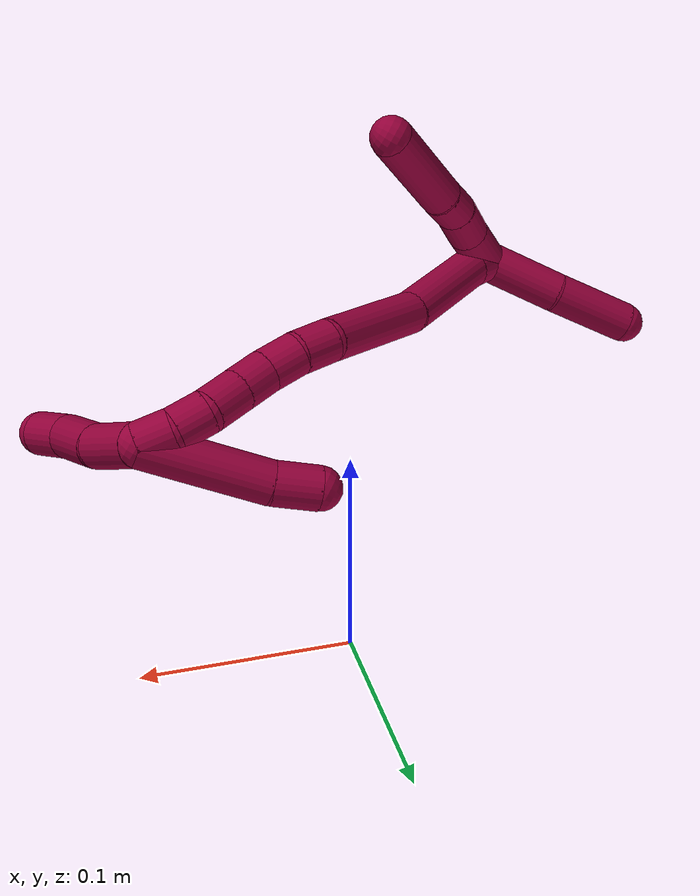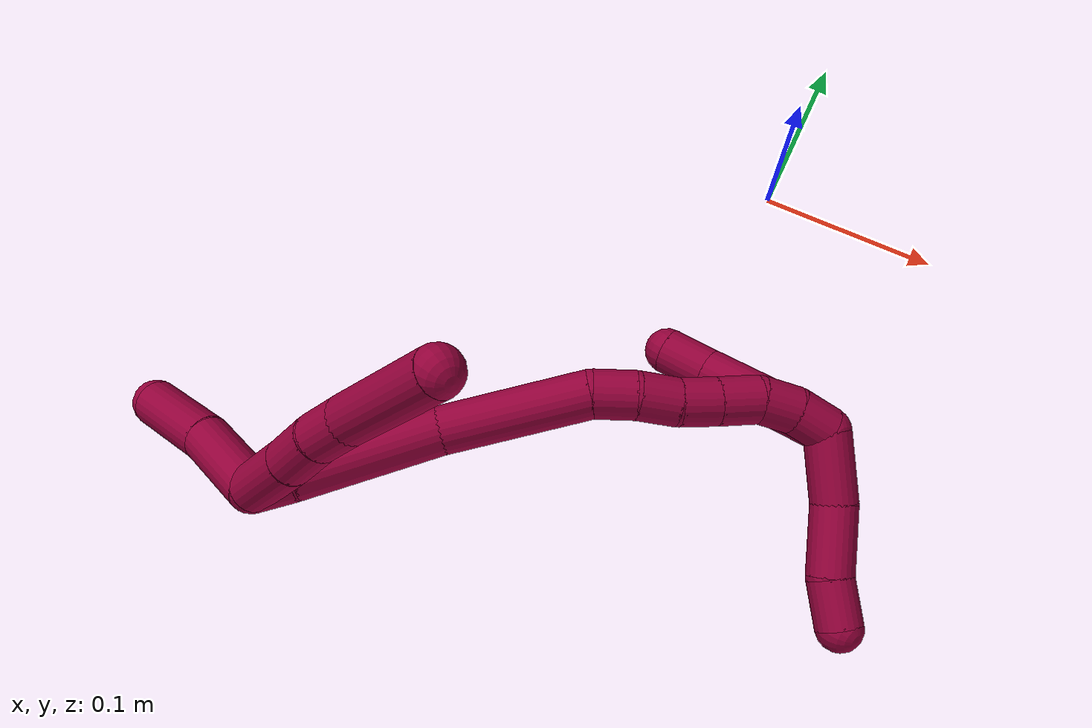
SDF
<sdf version="1.7">
 <world name="default">
  <model name="8">
   <static>0</static>
   <link name="8">
    <collision name="collision-cylinder-e_1_2_8">
     <pose>-0.009233 0.01066 -0.011632 -2.39977 -0.529442 1.21747</pose>
     <geometry><cylinder><radius>0.0125</radius><length>0.036561</length></cylinder></geometry>
     <surface>
      <friction><ode><mu>1.16</mu><mu2>1.16</mu2><slip1>0</slip1><slip2>0</slip2></ode></friction>
      <contact><ode><kp>1e+06</kp><kd>1</kd><max_vel>0</max_vel><min_depth>0.001</min_depth></ode></contact>
     </surface>
    </collision>
    <visual name="visual-cylinder-e_1_2_8">
     <pose>-0.009233 0.01066 -0.011632 -2.39977 -0.529442 1.21747</pose>
     <geometry><cylinder><radius>0.0125</radius><length>0.036561</length></cylinder></geometry>
     <material><ambient>0.584314 0 0.227451 1</ambient></material>
    </visual>
    <collision name="collision-cylinder-e_2_8_9">
     <pose>-0.025235 0.029457 -0.03118 -2.3424 -0.53773 1.15618</pose>
     <geometry><cylinder><radius>0.0125</radius><length>0.026434</length></cylinder></geometry>
     <surface>
      <friction><ode><mu>1.16</mu><mu2>1.16</mu2><slip1>0</slip1><slip2>0</slip2></ode></friction>
      <contact><ode><kp>1e+06</kp><kd>1</kd><max_vel>0</max_vel><min_depth>0.001</min_depth></ode></contact>
     </surface>
    </collision>
    <visual name="visual-cylinder-e_2_8_9">
     <pose>-0.025235 0.029457 -0.03118 -2.3424 -0.53773 1.15618</pose>
     <geometry><cylinder><radius>0.0125</radius><length>0.026434</length></cylinder></geometry>
     <material><ambient>0.584314 0 0.227451 1</ambient></material>
    </visual>
    <collision name="collision-cylinder-e_3_9_10">
     <pose>-0.038541 0.043235 -0.046169 -2.46834 -0.625616 1.49208</pose>
     <geometry><cylinder><radius>0.0125</radius><length>0.022324</length></cylinder></geometry>
     <surface>
      <friction><ode><mu>1.16</mu><mu2>1.16</mu2><slip1>0</slip1><slip2>0</slip2></ode></friction>
      <contact><ode><kp>1e+06</kp><kd>1</kd><max_vel>0</max_vel><min_depth>0.001</min_depth></ode></contact>
     </surface>
    </collision>
    <visual name="visual-cylinder-e_3_9_10">
     <pose>-0.038541 0.043235 -0.046169 -2.46834 -0.625616 1.49208</pose>
     <geometry><cylinder><radius>0.0125</radius><length>0.022324</length></cylinder></geometry>
     <material><ambient>0.584314 0 0.227451 1</ambient></material>
    </visual>
    <collision name="collision-cylinder-e_4_10_6">
     <pose>-0.060836 0.065815 -0.07584 -2.49838 -0.508982 1.32581</pose>
     <geometry><cylinder><radius>0.0125</radius><length>0.064681</length></cylinder></geometry>
     <surface>
      <friction><ode><mu>1.16</mu><mu2>1.16</mu2><slip1>0</slip1><slip2>0</slip2></ode></friction>
      <contact><ode><kp>1e+06</kp><kd>1</kd><max_vel>0</max_vel><min_depth>0.001</min_depth></ode></contact>
     </surface>
    </collision>
    <visual name="visual-cylinder-e_4_10_6">
     <pose>-0.060836 0.065815 -0.07584 -2.49838 -0.508982 1.32581</pose>
     <geometry><cylinder><radius>0.0125</radius><length>0.064681</length></cylinder></geometry>
     <material><ambient>0.584314 0 0.227451 1</ambient></material>
    </visual>
    <collision name="collision-cylinder-e_1_2_11">
     <pose>0.001346 0.001652 0.02451 -0.067312 0.054746 -0.001844</pose>
     <geometry><cylinder><radius>0.0125</radius><length>0.049206</length></cylinder></geometry>
     <surface>
      <friction><ode><mu>1.16</mu><mu2>1.16</mu2><slip1>0</slip1><slip2>0</slip2></ode></friction>
      <contact><ode><kp>1e+06</kp><kd>1</kd><max_vel>0</max_vel><min_depth>0.001</min_depth></ode></contact>
     </surface>
    </collision>
    <visual name="visual-cylinder-e_1_2_11">
     <pose>0.001346 0.001652 0.02451 -0.067312 0.054746 -0.001844</pose>
     <geometry><cylinder><radius>0.0125</radius><length>0.049206</length></cylinder></geometry>
     <material><ambient>0.584314 0 0.227451 1</ambient></material>
    </visual>
    <collision name="collision-cylinder-e_2_11_5">
     <pose>0.007385 0.003559 0.073979 -0.010173 0.185823 -0.000948</pose>
     <geometry><cylinder><radius>0.0125</radius><length>0.050794</length></cylinder></geometry>
     <surface>
      <friction><ode><mu>1.16</mu><mu2>1.16</mu2><slip1>0</slip1><slip2>0</slip2></ode></friction>
      <contact><ode><kp>1e+06</kp><kd>1</kd><max_vel>0</max_vel><min_depth>0.001</min_depth></ode></contact>
     </surface>
    </collision>
    <visual name="visual-cylinder-e_2_11_5">
     <pose>0.007385 0.003559 0.073979 -0.010173 0.185823 -0.000948</pose>
     <geometry><cylinder><radius>0.0125</radius><length>0.050794</length></cylinder></geometry>
     <material><ambient>0.584314 0 0.227451 1</ambient></material>
    </visual>
    <collision name="collision-cylinder-e_1_2_12">
     <pose>-0.009351 -0.00014 -0.004687 3.11163 -1.10598 -3.09306</pose>
     <geometry><cylinder><radius>0.0125</radius><length>0.020922</length></cylinder></geometry>
     <surface>
      <friction><ode><mu>1.16</mu><mu2>1.16</mu2><slip1>0</slip1><slip2>0</slip2></ode></friction>
      <contact><ode><kp>1e+06</kp><kd>1</kd><max_vel>0</max_vel><min_depth>0.001</min_depth></ode></contact>
     </surface>
    </collision>
    <visual name="visual-cylinder-e_1_2_12">
     <pose>-0.009351 -0.00014 -0.004687 3.11163 -1.10598 -3.09306</pose>
     <geometry><cylinder><radius>0.0125</radius><length>0.020922</length></cylinder></geometry>
     <material><ambient>0.584314 0 0.227451 1</ambient></material>
    </visual>
    <collision name="collision-cylinder-e_2_12_13">
     <pose>-0.053908 -0.002249 -0.022696 2.9949 -1.20545 -2.92885</pose>
     <geometry><cylinder><radius>0.0125</radius><length>0.075387</length></cylinder></geometry>
     <surface>
      <friction><ode><mu>1.16</mu><mu2>1.16</mu2><slip1>0</slip1><slip2>0</slip2></ode></friction>
      <contact><ode><kp>1e+06</kp><kd>1</kd><max_vel>0</max_vel><min_depth>0.001</min_depth></ode></contact>
     </surface>
    </collision>
    <visual name="visual-cylinder-e_2_12_13">
     <pose>-0.053908 -0.002249 -0.022696 2.9949 -1.20545 -2.92885</pose>
     <geometry><cylinder><radius>0.0125</radius><length>0.075387</length></cylinder></geometry>
     <material><ambient>0.584314 0 0.227451 1</ambient></material>
    </visual>
    <collision name="collision-cylinder-e_3_13_14">
     <pose>-0.122176 -0.003655 -0.055615 -3.11291 -1.03558 3.09124</pose>
     <geometry><cylinder><radius>0.0125</radius><length>0.076875</length></cylinder></geometry>
     <surface>
      <friction><ode><mu>1.16</mu><mu2>1.16</mu2><slip1>0</slip1><slip2>0</slip2></ode></friction>
      <contact><ode><kp>1e+06</kp><kd>1</kd><max_vel>0</max_vel><min_depth>0.001</min_depth></ode></contact>
     </surface>
    </collision>
    <visual name="visual-cylinder-e_3_13_14">
     <pose>-0.122176 -0.003655 -0.055615 -3.11291 -1.03558 3.09124</pose>
     <geometry><cylinder><radius>0.0125</radius><length>0.076875</length></cylinder></geometry>
     <material><ambient>0.584314 0 0.227451 1</ambient></material>
    </visual>
    <collision name="collision-cylinder-e_4_14_15">
     <pose>-0.163866 -0.005914 -0.081694 2.73119 -0.884315 -2.31319</pose>
     <geometry><cylinder><radius>0.0125</radius><length>0.02231</length></cylinder></geometry>
     <surface>
      <friction><ode><mu>1.16</mu><mu2>1.16</mu2><slip1>0</slip1><slip2>0</slip2></ode></friction>
      <contact><ode><kp>1e+06</kp><kd>1</kd><max_vel>0</max_vel><min_depth>0.001</min_depth></ode></contact>
     </surface>
    </collision>
    <visual name="visual-cylinder-e_4_14_15">
     <pose>-0.163866 -0.005914 -0.081694 2.73119 -0.884315 -2.31319</pose>
     <geometry><cylinder><radius>0.0125</radius><length>0.02231</length></cylinder></geometry>
     <material><ambient>0.584314 0 0.227451 1</ambient></material>
    </visual>
    <collision name="collision-cylinder-e_5_15_16">
     <pose>-0.180288 -0.013448 -0.093608 2.42681 -0.825556 -1.72948</pose>
     <geometry><cylinder><radius>0.0125</radius><length>0.021209</length></cylinder></geometry>
     <surface>
      <friction><ode><mu>1.16</mu><mu2>1.16</mu2><slip1>0</slip1><slip2>0</slip2></ode></friction>
      <contact><ode><kp>1e+06</kp><kd>1</kd><max_vel>0</max_vel><min_depth>0.001</min_depth></ode></contact>
     </surface>
    </collision>
    <visual name="visual-cylinder-e_5_15_16">
     <pose>-0.180288 -0.013448 -0.093608 2.42681 -0.825556 -1.72948</pose>
     <geometry><cylinder><radius>0.0125</radius><length>0.021209</length></cylinder></geometry>
     <material><ambient>0.584314 0 0.227451 1</ambient></material>
    </visual>
    <collision name="collision-cylinder-e_6_16_17">
     <pose>-0.196663 -0.021556 -0.103338 2.47331 -1.00268 -2.01229</pose>
     <geometry><cylinder><radius>0.0125</radius><length>0.02036</length></cylinder></geometry>
     <surface>
      <friction><ode><mu>1.16</mu><mu2>1.16</mu2><slip1>0</slip1><slip2>0</slip2></ode></friction>
      <contact><ode><kp>1e+06</kp><kd>1</kd><max_vel>0</max_vel><min_depth>0.001</min_depth></ode></contact>
     </surface>
    </collision>
    <visual name="visual-cylinder-e_6_16_17">
     <pose>-0.196663 -0.021556 -0.103338 2.47331 -1.00268 -2.01229</pose>
     <geometry><cylinder><radius>0.0125</radius><length>0.02036</length></cylinder></geometry>
     <material><ambient>0.584314 0 0.227451 1</ambient></material>
    </visual>
    <collision name="collision-cylinder-e_7_17_18">
     <pose>-0.214863 -0.028387 -0.112335 2.50998 -1.02667 -2.09104</pose>
     <geometry><cylinder><radius>0.0125</radius><length>0.022488</length></cylinder></geometry>
     <surface>
      <friction><ode><mu>1.16</mu><mu2>1.16</mu2><slip1>0</slip1><slip2>0</slip2></ode></friction>
      <contact><ode><kp>1e+06</kp><kd>1</kd><max_vel>0</max_vel><min_depth>0.001</min_depth></ode></contact>
     </surface>
    </collision>
    <visual name="visual-cylinder-e_7_17_18">
     <pose>-0.214863 -0.028387 -0.112335 2.50998 -1.02667 -2.09104</pose>
     <geometry><cylinder><radius>0.0125</radius><length>0.022488</length></cylinder></geometry>
     <material><ambient>0.584314 0 0.227451 1</ambient></material>
    </visual>
    <collision name="collision-cylinder-e_8_18_19">
     <pose>-0.231084 -0.037218 -0.122396 2.3533 -0.714744 -1.4632</pose>
     <geometry><cylinder><radius>0.0125</radius><length>0.020142</length></cylinder></geometry>
     <surface>
      <friction><ode><mu>1.16</mu><mu2>1.16</mu2><slip1>0</slip1><slip2>0</slip2></ode></friction>
      <contact><ode><kp>1e+06</kp><kd>1</kd><max_vel>0</max_vel><min_depth>0.001</min_depth></ode></contact>
     </surface>
    </collision>
    <visual name="visual-cylinder-e_8_18_19">
     <pose>-0.231084 -0.037218 -0.122396 2.3533 -0.714744 -1.4632</pose>
     <geometry><cylinder><radius>0.0125</radius><length>0.020142</length></cylinder></geometry>
     <material><ambient>0.584314 0 0.227451 1</ambient></material>
    </visual>
    <collision name="collision-cylinder-e_9_19_1">
     <pose>-0.242182 -0.049154 -0.134088 2.33964 -0.458821 -1.00696</pose>
     <geometry><cylinder><radius>0.0125</radius><length>0.020307</length></cylinder></geometry>
     <surface>
      <friction><ode><mu>1.16</mu><mu2>1.16</mu2><slip1>0</slip1><slip2>0</slip2></ode></friction>
      <contact><ode><kp>1e+06</kp><kd>1</kd><max_vel>0</max_vel><min_depth>0.001</min_depth></ode></contact>
     </surface>
    </collision>
    <visual name="visual-cylinder-e_9_19_1">
     <pose>-0.242182 -0.049154 -0.134088 2.33964 -0.458821 -1.00696</pose>
     <geometry><cylinder><radius>0.0125</radius><length>0.020307</length></cylinder></geometry>
     <material><ambient>0.584314 0 0.227451 1</ambient></material>
    </visual>
    <collision name="collision-cylinder-e_1_1_20">
     <pose>-0.238627 -0.070187 -0.149107 2.11095 0.444747 0.759694</pose>
     <geometry><cylinder><radius>0.0125</radius><length>0.037431</length></cylinder></geometry>
     <surface>
      <friction><ode><mu>1.16</mu><mu2>1.16</mu2><slip1>0</slip1><slip2>0</slip2></ode></friction>
      <contact><ode><kp>1e+06</kp><kd>1</kd><max_vel>0</max_vel><min_depth>0.001</min_depth></ode></contact>
     </surface>
    </collision>
    <visual name="visual-cylinder-e_1_1_20">
     <pose>-0.238627 -0.070187 -0.149107 2.11095 0.444747 0.759694</pose>
     <geometry><cylinder><radius>0.0125</radius><length>0.037431</length></cylinder></geometry>
     <material><ambient>0.584314 0 0.227451 1</ambient></material>
    </visual>
    <collision name="collision-cylinder-e_2_20_21">
     <pose>-0.219288 -0.096985 -0.165859 2.15074 0.654312 1.12148</pose>
     <geometry><cylinder><radius>0.0125</radius><length>0.03709</length></cylinder></geometry>
     <surface>
      <friction><ode><mu>1.16</mu><mu2>1.16</mu2><slip1>0</slip1><slip2>0</slip2></ode></friction>
      <contact><ode><kp>1e+06</kp><kd>1</kd><max_vel>0</max_vel><min_depth>0.001</min_depth></ode></contact>
     </surface>
    </collision>
    <visual name="visual-cylinder-e_2_20_21">
     <pose>-0.219288 -0.096985 -0.165859 2.15074 0.654312 1.12148</pose>
     <geometry><cylinder><radius>0.0125</radius><length>0.03709</length></cylinder></geometry>
     <material><ambient>0.584314 0 0.227451 1</ambient></material>
    </visual>
    <collision name="collision-cylinder-e_3_21_4">
     <pose>-0.202653 -0.118237 -0.181251 2.25741 0.433265 0.870456</pose>
     <geometry><cylinder><radius>0.0125</radius><length>0.025479</length></cylinder></geometry>
     <surface>
      <friction><ode><mu>1.16</mu><mu2>1.16</mu2><slip1>0</slip1><slip2>0</slip2></ode></friction>
      <contact><ode><kp>1e+06</kp><kd>1</kd><max_vel>0</max_vel><min_depth>0.001</min_depth></ode></contact>
     </surface>
    </collision>
    <visual name="visual-cylinder-e_3_21_4">
     <pose>-0.202653 -0.118237 -0.181251 2.25741 0.433265 0.870456</pose>
     <geometry><cylinder><radius>0.0125</radius><length>0.025479</length></cylinder></geometry>
     <material><ambient>0.584314 0 0.227451 1</ambient></material>
    </visual>
    <collision name="collision-cylinder-e_1_1_22">
     <pose>-0.239308 -0.051596 -0.104519 -0.113739 0.201235 -0.011495</pose>
     <geometry><cylinder><radius>0.0125</radius><length>0.073754</length></cylinder></geometry>
     <surface>
      <friction><ode><mu>1.16</mu><mu2>1.16</mu2><slip1>0</slip1><slip2>0</slip2></ode></friction>
      <contact><ode><kp>1e+06</kp><kd>1</kd><max_vel>0</max_vel><min_depth>0.001</min_depth></ode></contact>
     </surface>
    </collision>
    <visual name="visual-cylinder-e_1_1_22">
     <pose>-0.239308 -0.051596 -0.104519 -0.113739 0.201235 -0.011495</pose>
     <geometry><cylinder><radius>0.0125</radius><length>0.073754</length></cylinder></geometry>
     <material><ambient>0.584314 0 0.227451 1</ambient></material>
    </visual>
    <collision name="collision-cylinder-e_2_22_3">
     <pose>-0.228231 -0.044259 -0.056454 -0.260019 0.286322 -0.037689</pose>
     <geometry><cylinder><radius>0.0125</radius><length>0.026246</length></cylinder></geometry>
     <surface>
      <friction><ode><mu>1.16</mu><mu2>1.16</mu2><slip1>0</slip1><slip2>0</slip2></ode></friction>
      <contact><ode><kp>1e+06</kp><kd>1</kd><max_vel>0</max_vel><min_depth>0.001</min_depth></ode></contact>
     </surface>
    </collision>
    <visual name="visual-cylinder-e_2_22_3">
     <pose>-0.228231 -0.044259 -0.056454 -0.260019 0.286322 -0.037689</pose>
     <geometry><cylinder><radius>0.0125</radius><length>0.026246</length></cylinder></geometry>
     <material><ambient>0.584314 0 0.227451 1</ambient></material>
    </visual>
    <collision name="collision-sphere-3">
     <pose>-0.224525 -0.041022 -0.044288 0 -0 0</pose>
     <geometry><sphere><radius>0.0125</radius></sphere></geometry>
     <surface>
      <friction><ode><mu>1.16</mu><mu2>1.16</mu2><slip1>0</slip1><slip2>0</slip2></ode></friction>
      <contact><ode><kp>1e+06</kp><kd>1</kd><max_vel>0</max_vel><min_depth>0.001</min_depth></ode></contact>
     </surface>
    </collision>
    <visual name="visual-sphere-3">
     <pose>-0.224525 -0.041022 -0.044288 0 -0 0</pose>
     <geometry><sphere><radius>0.0125</radius></sphere></geometry>
     <material><ambient>0.584314 0 0.227451 1</ambient></material>
    </visual>
    <collision name="collision-sphere-22">
     <pose>-0.231937 -0.047496 -0.068619 0 -0 0</pose>
     <geometry><sphere><radius>0.0125</radius></sphere></geometry>
     <surface>
      <friction><ode><mu>1.16</mu><mu2>1.16</mu2><slip1>0</slip1><slip2>0</slip2></ode></friction>
      <contact><ode><kp>1e+06</kp><kd>1</kd><max_vel>0</max_vel><min_depth>0.001</min_depth></ode></contact>
     </surface>
    </collision>
    <visual name="visual-sphere-22">
     <pose>-0.231937 -0.047496 -0.068619 0 -0 0</pose>
     <geometry><sphere><radius>0.0125</radius></sphere></geometry>
     <material><ambient>0.584314 0 0.227451 1</ambient></material>
    </visual>
    <collision name="collision-sphere-4">
     <pose>-0.197305 -0.127179 -0.188581 0 -0 0</pose>
     <geometry><sphere><radius>0.0125</radius></sphere></geometry>
     <surface>
      <friction><ode><mu>1.16</mu><mu2>1.16</mu2><slip1>0</slip1><slip2>0</slip2></ode></friction>
      <contact><ode><kp>1e+06</kp><kd>1</kd><max_vel>0</max_vel><min_depth>0.001</min_depth></ode></contact>
     </surface>
    </collision>
    <visual name="visual-sphere-4">
     <pose>-0.197305 -0.127179 -0.188581 0 -0 0</pose>
     <geometry><sphere><radius>0.0125</radius></sphere></geometry>
     <material><ambient>0.584314 0 0.227451 1</ambient></material>
    </visual>
    <collision name="collision-sphere-21">
     <pose>-0.208001 -0.109294 -0.173922 0 -0 0</pose>
     <geometry><sphere><radius>0.0125</radius></sphere></geometry>
     <surface>
      <friction><ode><mu>1.16</mu><mu2>1.16</mu2><slip1>0</slip1><slip2>0</slip2></ode></friction>
      <contact><ode><kp>1e+06</kp><kd>1</kd><max_vel>0</max_vel><min_depth>0.001</min_depth></ode></contact>
     </surface>
    </collision>
    <visual name="visual-sphere-21">
     <pose>-0.208001 -0.109294 -0.173922 0 -0 0</pose>
     <geometry><sphere><radius>0.0125</radius></sphere></geometry>
     <material><ambient>0.584314 0 0.227451 1</ambient></material>
    </visual>
    <collision name="collision-sphere-20">
     <pose>-0.230575 -0.084676 -0.157795 0 -0 0</pose>
     <geometry><sphere><radius>0.0125</radius></sphere></geometry>
     <surface>
      <friction><ode><mu>1.16</mu><mu2>1.16</mu2><slip1>0</slip1><slip2>0</slip2></ode></friction>
      <contact><ode><kp>1e+06</kp><kd>1</kd><max_vel>0</max_vel><min_depth>0.001</min_depth></ode></contact>
     </surface>
    </collision>
    <visual name="visual-sphere-20">
     <pose>-0.230575 -0.084676 -0.157795 0 -0 0</pose>
     <geometry><sphere><radius>0.0125</radius></sphere></geometry>
     <material><ambient>0.584314 0 0.227451 1</ambient></material>
    </visual>
    <collision name="collision-sphere-11">
     <pose>0.002692 0.003305 0.049021 0 -0 0</pose>
     <geometry><sphere><radius>0.0125</radius></sphere></geometry>
     <surface>
      <friction><ode><mu>1.16</mu><mu2>1.16</mu2><slip1>0</slip1><slip2>0</slip2></ode></friction>
      <contact><ode><kp>1e+06</kp><kd>1</kd><max_vel>0</max_vel><min_depth>0.001</min_depth></ode></contact>
     </surface>
    </collision>
    <visual name="visual-sphere-11">
     <pose>0.002692 0.003305 0.049021 0 -0 0</pose>
     <geometry><sphere><radius>0.0125</radius></sphere></geometry>
     <material><ambient>0.584314 0 0.227451 1</ambient></material>
    </visual>
    <collision name="collision-sphere-6">
     <pose>-0.076596 0.082753 -0.098438 0 -0 0</pose>
     <geometry><sphere><radius>0.0125</radius></sphere></geometry>
     <surface>
      <friction><ode><mu>1.16</mu><mu2>1.16</mu2><slip1>0</slip1><slip2>0</slip2></ode></friction>
      <contact><ode><kp>1e+06</kp><kd>1</kd><max_vel>0</max_vel><min_depth>0.001</min_depth></ode></contact>
     </surface>
    </collision>
    <visual name="visual-sphere-6">
     <pose>-0.076596 0.082753 -0.098438 0 -0 0</pose>
     <geometry><sphere><radius>0.0125</radius></sphere></geometry>
     <material><ambient>0.584314 0 0.227451 1</ambient></material>
    </visual>
    <collision name="collision-sphere-10">
     <pose>-0.045077 0.048877 -0.053242 0 -0 0</pose>
     <geometry><sphere><radius>0.0125</radius></sphere></geometry>
     <surface>
      <friction><ode><mu>1.16</mu><mu2>1.16</mu2><slip1>0</slip1><slip2>0</slip2></ode></friction>
      <contact><ode><kp>1e+06</kp><kd>1</kd><max_vel>0</max_vel><min_depth>0.001</min_depth></ode></contact>
     </surface>
    </collision>
    <visual name="visual-sphere-10">
     <pose>-0.045077 0.048877 -0.053242 0 -0 0</pose>
     <geometry><sphere><radius>0.0125</radius></sphere></geometry>
     <material><ambient>0.584314 0 0.227451 1</ambient></material>
    </visual>
    <collision name="collision-sphere-9">
     <pose>-0.032005 0.037594 -0.039095 0 -0 0</pose>
     <geometry><sphere><radius>0.0125</radius></sphere></geometry>
     <surface>
      <friction><ode><mu>1.16</mu><mu2>1.16</mu2><slip1>0</slip1><slip2>0</slip2></ode></friction>
      <contact><ode><kp>1e+06</kp><kd>1</kd><max_vel>0</max_vel><min_depth>0.001</min_depth></ode></contact>
     </surface>
    </collision>
    <visual name="visual-sphere-9">
     <pose>-0.032005 0.037594 -0.039095 0 -0 0</pose>
     <geometry><sphere><radius>0.0125</radius></sphere></geometry>
     <material><ambient>0.584314 0 0.227451 1</ambient></material>
    </visual>
    <collision name="collision-sphere-2">
     <geometry><sphere><radius>0.0125</radius></sphere></geometry>
     <surface>
      <friction><ode><mu>1.16</mu><mu2>1.16</mu2><slip1>0</slip1><slip2>0</slip2></ode></friction>
      <contact><ode><kp>1e+06</kp><kd>1</kd><max_vel>0</max_vel><min_depth>0.001</min_depth></ode></contact>
     </surface>
    </collision>
    <visual name="visual-sphere-2">
     <geometry><sphere><radius>0.0125</radius></sphere></geometry>
     <material><ambient>0.584314 0 0.227451 1</ambient></material>
    </visual>
    <collision name="collision-sphere-19">
     <pose>-0.237685 -0.042612 -0.127759 0 -0 0</pose>
     <geometry><sphere><radius>0.0125</radius></sphere></geometry>
     <surface>
      <friction><ode><mu>1.16</mu><mu2>1.16</mu2><slip1>0</slip1><slip2>0</slip2></ode></friction>
      <contact><ode><kp>1e+06</kp><kd>1</kd><max_vel>0</max_vel><min_depth>0.001</min_depth></ode></contact>
     </surface>
    </collision>
    <visual name="visual-sphere-19">
     <pose>-0.237685 -0.042612 -0.127759 0 -0 0</pose>
     <geometry><sphere><radius>0.0125</radius></sphere></geometry>
     <material><ambient>0.584314 0 0.227451 1</ambient></material>
    </visual>
    <collision name="collision-sphere-8">
     <pose>-0.018465 0.02132 -0.023264 0 -0 0</pose>
     <geometry><sphere><radius>0.0125</radius></sphere></geometry>
     <surface>
      <friction><ode><mu>1.16</mu><mu2>1.16</mu2><slip1>0</slip1><slip2>0</slip2></ode></friction>
      <contact><ode><kp>1e+06</kp><kd>1</kd><max_vel>0</max_vel><min_depth>0.001</min_depth></ode></contact>
     </surface>
    </collision>
    <visual name="visual-sphere-8">
     <pose>-0.018465 0.02132 -0.023264 0 -0 0</pose>
     <geometry><sphere><radius>0.0125</radius></sphere></geometry>
     <material><ambient>0.584314 0 0.227451 1</ambient></material>
    </visual>
    <collision name="collision-sphere-5">
     <pose>0.012077 0.003813 0.098938 0 -0 0</pose>
     <geometry><sphere><radius>0.0125</radius></sphere></geometry>
     <surface>
      <friction><ode><mu>1.16</mu><mu2>1.16</mu2><slip1>0</slip1><slip2>0</slip2></ode></friction>
      <contact><ode><kp>1e+06</kp><kd>1</kd><max_vel>0</max_vel><min_depth>0.001</min_depth></ode></contact>
     </surface>
    </collision>
    <visual name="visual-sphere-5">
     <pose>0.012077 0.003813 0.098938 0 -0 0</pose>
     <geometry><sphere><radius>0.0125</radius></sphere></geometry>
     <material><ambient>0.584314 0 0.227451 1</ambient></material>
    </visual>
    <collision name="collision-sphere-12">
     <pose>-0.018702 -0.000281 -0.009374 0 -0 0</pose>
     <geometry><sphere><radius>0.0125</radius></sphere></geometry>
     <surface>
      <friction><ode><mu>1.16</mu><mu2>1.16</mu2><slip1>0</slip1><slip2>0</slip2></ode></friction>
      <contact><ode><kp>1e+06</kp><kd>1</kd><max_vel>0</max_vel><min_depth>0.001</min_depth></ode></contact>
     </surface>
    </collision>
    <visual name="visual-sphere-12">
     <pose>-0.018702 -0.000281 -0.009374 0 -0 0</pose>
     <geometry><sphere><radius>0.0125</radius></sphere></geometry>
     <material><ambient>0.584314 0 0.227451 1</ambient></material>
    </visual>
    <collision name="collision-sphere-13">
     <pose>-0.089114 -0.004218 -0.036019 0 -0 0</pose>
     <geometry><sphere><radius>0.0125</radius></sphere></geometry>
     <surface>
      <friction><ode><mu>1.16</mu><mu2>1.16</mu2><slip1>0</slip1><slip2>0</slip2></ode></friction>
      <contact><ode><kp>1e+06</kp><kd>1</kd><max_vel>0</max_vel><min_depth>0.001</min_depth></ode></contact>
     </surface>
    </collision>
    <visual name="visual-sphere-13">
     <pose>-0.089114 -0.004218 -0.036019 0 -0 0</pose>
     <geometry><sphere><radius>0.0125</radius></sphere></geometry>
     <material><ambient>0.584314 0 0.227451 1</ambient></material>
    </visual>
    <collision name="collision-sphere-14">
     <pose>-0.155238 -0.003093 -0.075211 0 -0 0</pose>
     <geometry><sphere><radius>0.0125</radius></sphere></geometry>
     <surface>
      <friction><ode><mu>1.16</mu><mu2>1.16</mu2><slip1>0</slip1><slip2>0</slip2></ode></friction>
      <contact><ode><kp>1e+06</kp><kd>1</kd><max_vel>0</max_vel><min_depth>0.001</min_depth></ode></contact>
     </surface>
    </collision>
    <visual name="visual-sphere-14">
     <pose>-0.155238 -0.003093 -0.075211 0 -0 0</pose>
     <geometry><sphere><radius>0.0125</radius></sphere></geometry>
     <material><ambient>0.584314 0 0.227451 1</ambient></material>
    </visual>
    <collision name="collision-sphere-15">
     <pose>-0.172494 -0.008735 -0.088177 0 -0 0</pose>
     <geometry><sphere><radius>0.0125</radius></sphere></geometry>
     <surface>
      <friction><ode><mu>1.16</mu><mu2>1.16</mu2><slip1>0</slip1><slip2>0</slip2></ode></friction>
      <contact><ode><kp>1e+06</kp><kd>1</kd><max_vel>0</max_vel><min_depth>0.001</min_depth></ode></contact>
     </surface>
    </collision>
    <visual name="visual-sphere-15">
     <pose>-0.172494 -0.008735 -0.088177 0 -0 0</pose>
     <geometry><sphere><radius>0.0125</radius></sphere></geometry>
     <material><ambient>0.584314 0 0.227451 1</ambient></material>
    </visual>
    <collision name="collision-sphere-16">
     <pose>-0.188082 -0.018162 -0.099039 0 -0 0</pose>
     <geometry><sphere><radius>0.0125</radius></sphere></geometry>
     <surface>
      <friction><ode><mu>1.16</mu><mu2>1.16</mu2><slip1>0</slip1><slip2>0</slip2></ode></friction>
      <contact><ode><kp>1e+06</kp><kd>1</kd><max_vel>0</max_vel><min_depth>0.001</min_depth></ode></contact>
     </surface>
    </collision>
    <visual name="visual-sphere-16">
     <pose>-0.188082 -0.018162 -0.099039 0 -0 0</pose>
     <geometry><sphere><radius>0.0125</radius></sphere></geometry>
     <material><ambient>0.584314 0 0.227451 1</ambient></material>
    </visual>
    <collision name="collision-sphere-17">
     <pose>-0.205244 -0.02495 -0.107638 0 -0 0</pose>
     <geometry><sphere><radius>0.0125</radius></sphere></geometry>
     <surface>
      <friction><ode><mu>1.16</mu><mu2>1.16</mu2><slip1>0</slip1><slip2>0</slip2></ode></friction>
      <contact><ode><kp>1e+06</kp><kd>1</kd><max_vel>0</max_vel><min_depth>0.001</min_depth></ode></contact>
     </surface>
    </collision>
    <visual name="visual-sphere-17">
     <pose>-0.205244 -0.02495 -0.107638 0 -0 0</pose>
     <geometry><sphere><radius>0.0125</radius></sphere></geometry>
     <material><ambient>0.584314 0 0.227451 1</ambient></material>
    </visual>
    <collision name="collision-sphere-18">
     <pose>-0.224483 -0.031824 -0.117033 0 -0 0</pose>
     <geometry><sphere><radius>0.0125</radius></sphere></geometry>
     <surface>
      <friction><ode><mu>1.16</mu><mu2>1.16</mu2><slip1>0</slip1><slip2>0</slip2></ode></friction>
      <contact><ode><kp>1e+06</kp><kd>1</kd><max_vel>0</max_vel><min_depth>0.001</min_depth></ode></contact>
     </surface>
    </collision>
    <visual name="visual-sphere-18">
     <pose>-0.224483 -0.031824 -0.117033 0 -0 0</pose>
     <geometry><sphere><radius>0.0125</radius></sphere></geometry>
     <material><ambient>0.584314 0 0.227451 1</ambient></material>
    </visual>
    <collision name="collision-sphere-1">
     <pose>-0.246679 -0.055697 -0.140418 0 -0 0</pose>
     <geometry><sphere><radius>0.0125</radius></sphere></geometry>
     <surface>
      <friction><ode><mu>1.16</mu><mu2>1.16</mu2><slip1>0</slip1><slip2>0</slip2></ode></friction>
      <contact><ode><kp>1e+06</kp><kd>1</kd><max_vel>0</max_vel><min_depth>0.001</min_depth></ode></contact>
     </surface>
    </collision>
    <visual name="visual-sphere-1">
     <pose>-0.246679 -0.055697 -0.140418 0 -0 0</pose>
     <geometry><sphere><radius>0.0125</radius></sphere></geometry>
     <material><ambient>0.584314 0 0.227451 1</ambient></material>
    </visual>
    <inertial>
     <pose>-0.121023 -0.014996 -0.063299 0 -0 0</pose>
     <mass>0.75</mass>
     <inertia><ixx>5.3e-05</ixx><ixy>0</ixy><ixz>0</ixz><iyy>0.000182</iyy><iyz>0</iyz><izz>6.3e-05</izz></inertia>
    </inertial>
   </link>
   <pose>-0.168571 -0.288514 0.055477 2.08184 -0.13095 -2.04375</pose>
  </model>
 </world>
</sdf>
